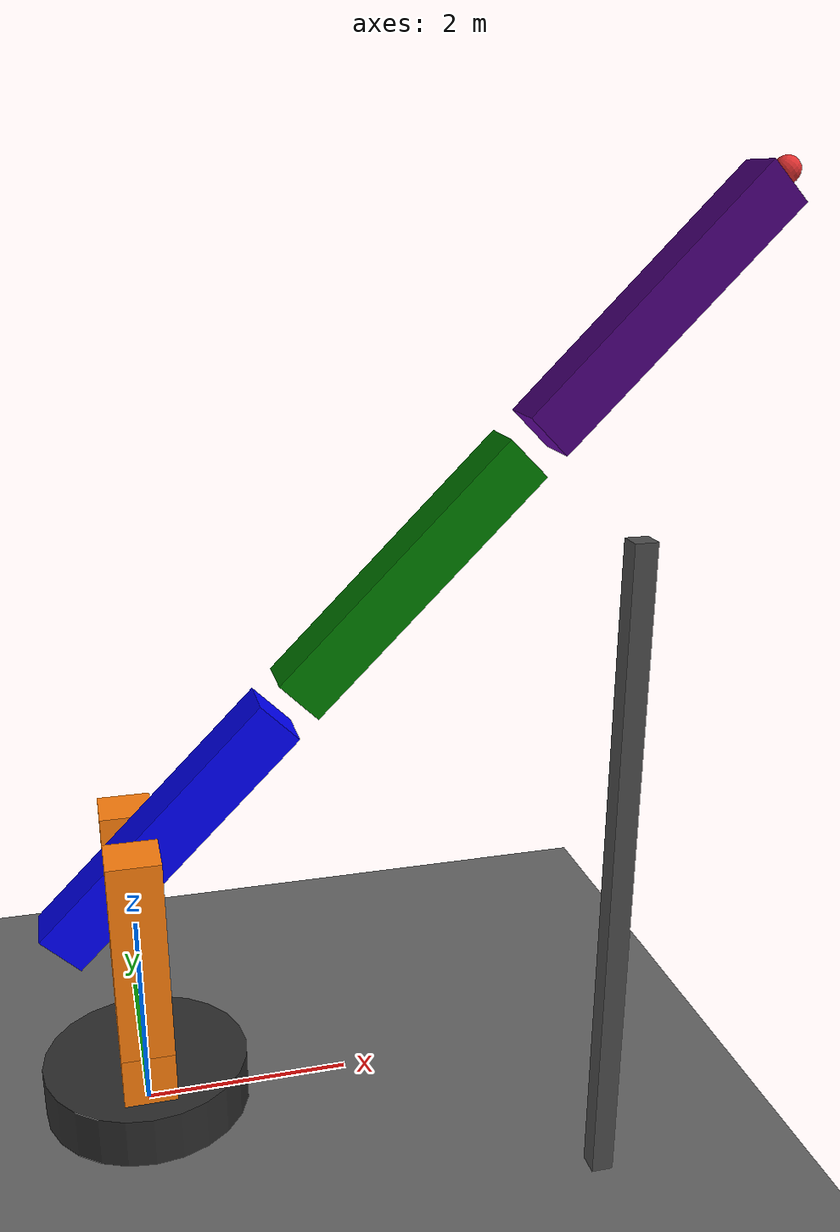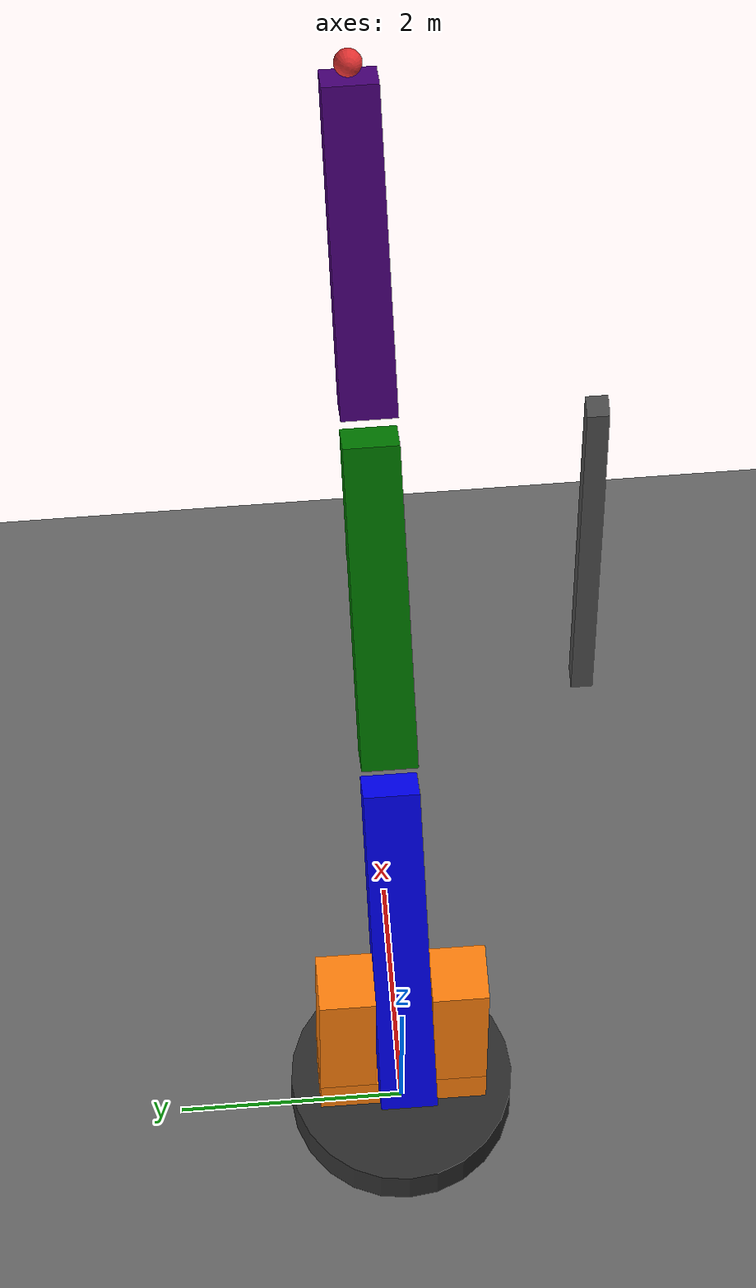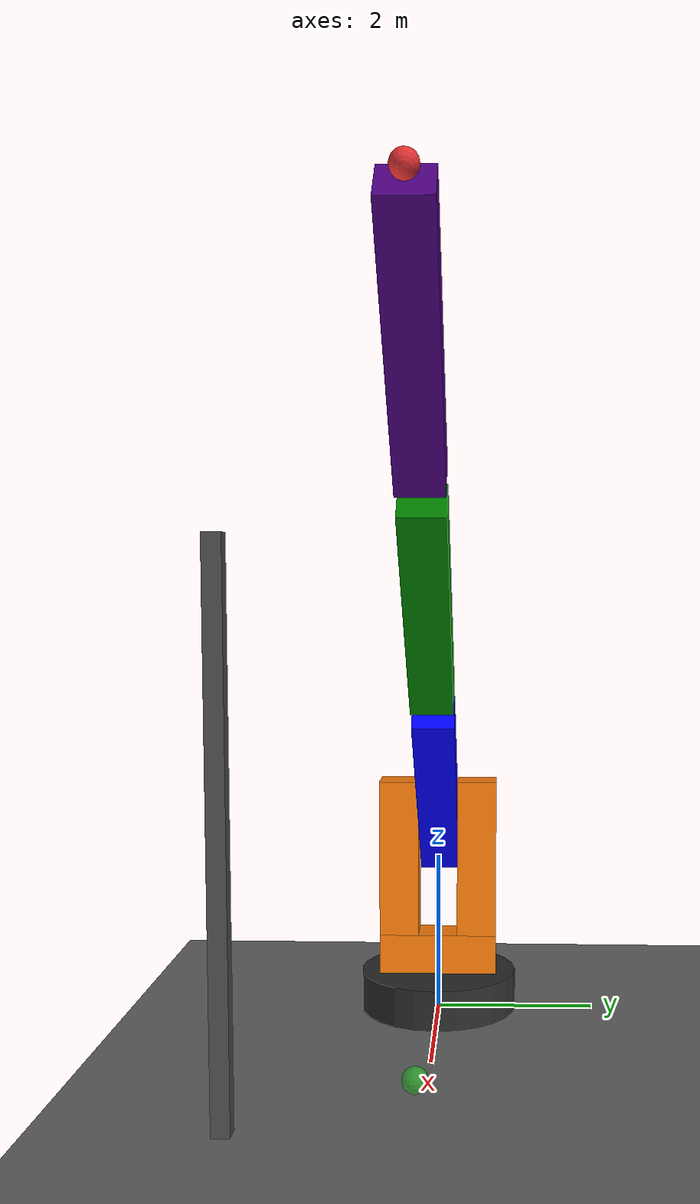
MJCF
<mujoco model="pioneer">
    <compiler angle="radian"/>
    <size njmax="500" nconmax="100"/>

    <!-- we don't need no gravity: this is a purely kinematic environment -->
    <option gravity="0 0 0"/>

    <worldbody>
        <light mode="fixed" directional="true" pos="0 0 10" dir="0 0 -1" ambient="0.1 0.1 0.1"/>

        <body name="ground" pos="0 0 0">
            <geom pos="0 0 0" rgba="0.4 0.4 0.4 1" size="6 6 1" type="plane"/>
        </body>

        <!-- everything related to the robot itself must have the 'robot:' prefix -->
        <body name="robot:base" pos="0 0 0">
            <geom size="1 0.25" pos="0 0 0.25" rgba="0.175 0.175 0.175 1" type="cylinder"/>

            <body name="robot:rotator" pos="0 0 0.25">
                <joint name="robot:base_to_rotator" pos="0 0 0" axis="0 0 1" limited="true" range="-1.309 1.309" type="hinge"/>
                <geom size="0.25 0.75 0.25" pos="0 0 0.5" rgba="1 0.5 0.05 1" type="box"/>
                <geom size="0.25 0.25 1.0" pos="0 -0.5 1.75" rgba="1 0.5 0.05 1" type="box"/>
                <geom size="0.25 0.25 1.0" pos="0 0.5 1.75" rgba="1 0.5 0.05 1" type="box"/>

                <body name="robot:arm1" pos="0 0 2.0" euler="0 -0.7854 0">
                    <joint name="robot:rotator_to_arm1" pos="0 0 0" axis="0 1 0" limited="true" range="-0.7854 0.7854" type="hinge"/>
                    <geom size="1.5 0.25 0.25" pos="0.75 0 0.25" rgba="0 0 1 1" type="box"/>

                    <body name="robot:arm2" pos="2 0 0" euler="0 0 0">
                        <joint name="robot:arm1_to_arm2" pos="0 0 0.25" axis="0 1 0" limited="true" range="-1.5708 1.5708" type="hinge"/>
                        <geom size="1.5 0.25 0.25" pos="2 0 0.25" rgba="0 0.5 0 1" type="box"/>

                        <body name="robot:arm3" pos="3.25 0 0" euler="0 0 0">
                            <joint name="robot:arm2_to_arm3" pos="0 0 0.25" axis="0 1 0" limited="true" range="-1.5708 1.5708" type="hinge"/>
                             <geom size="1.5 0.25 0.25" pos="2 0 0.25" rgba="0.3 0 0.5 1" type="box"/>

                            <body name="robot:pointer" pos="3.5 0 0">
                                <geom size="0.125" pos="0.125 0 0.25" rgba="0.9 0.2 0.2 1" type="sphere"/>
                            </body>
                        </body>

                    </body>
                </body>
            </body>
        </body>

        <body name="obstacles">
            <geom size="0.1 0.1 3" pos="4 -2 3" rgba="0.3 0.3 0.3 1" type="box"/>
        </body>

        <body name="target" pos="5 0 1">
            <geom conaffinity="0" contype="0" size="0.125" rgba="0.1 0.9 0.1 0.5" type="sphere"/>
        </body>

    </worldbody>
</mujoco>
